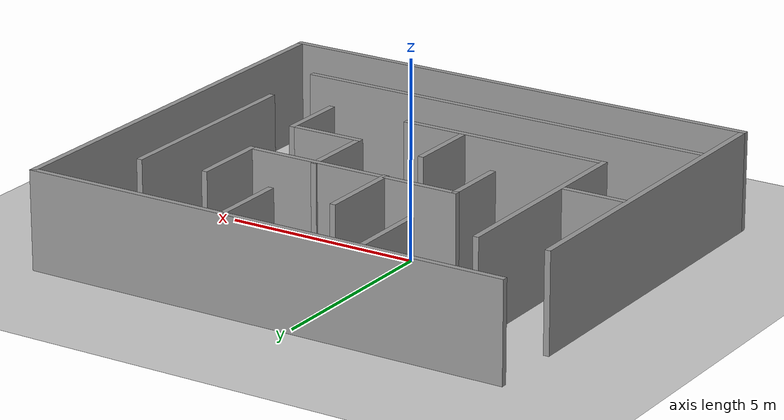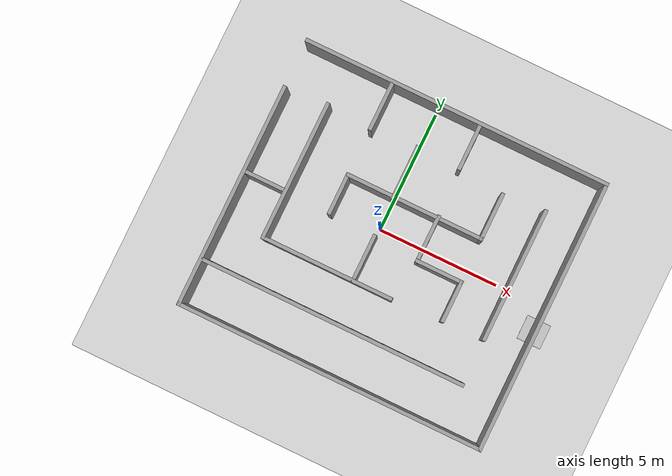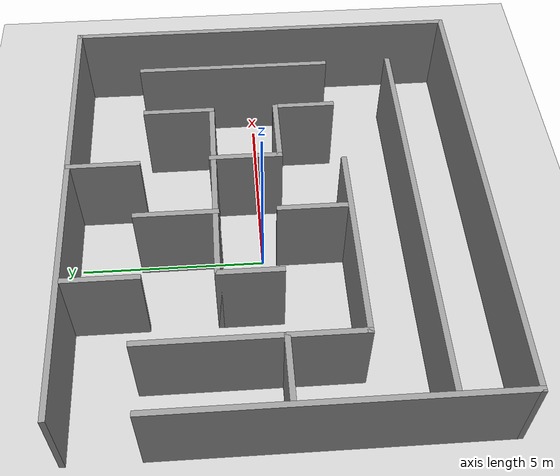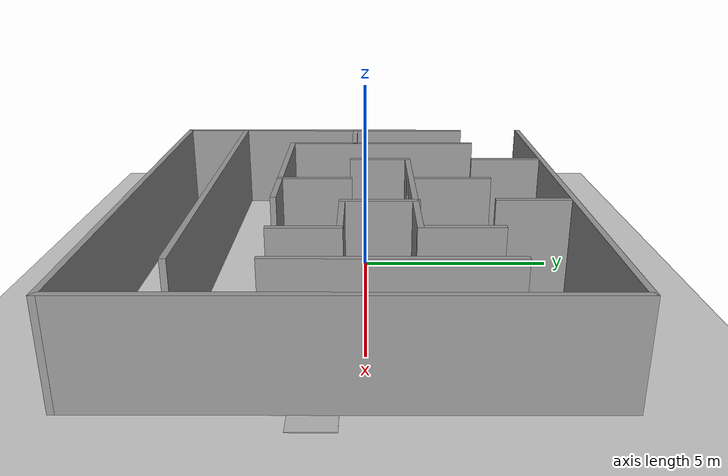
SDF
<?xml version="1.0" ?>
<sdf version="1.6">
  <world name="maze_world">
    <include>
      <uri>model://sun</uri>
    </include>
    <!-- A ground plane -->
    <include>
      <uri>model://ground_plane</uri>
    </include>
    <include>
    	<uri>model://maze</uri>
    </include>
    <plugin name="gazebo_ros_state" filename="libgazebo_ros_state.so">
      <ros>
        <namespace>/gazebo</namespace>
      </ros>
      <update_rate>50.0</update_rate>
    </plugin>
    <model name='marker_0001'>
      <static>1</static>
      <link name='link'>
        <visual name='visual'>
          <geometry>
            <mesh>
              <uri>model://marker_0001/meshes/marker_0001.dae</uri>
              <scale>2 2 2</scale>
            </mesh>
          </geometry>
        </visual>
        <self_collide>0</self_collide>
        <enable_wind>0</enable_wind>
        <kinematic>0</kinematic>
      </link>
      <pose>7.62 -1.0 -0.01 0 1.57 3.14</pose>
    </model>
  </world>
</sdf>

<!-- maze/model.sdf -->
<sdf version='1.7'>
  <model name='maze'>
    <pose>0.736927 -0.393909 0 0 -0 0</pose>
    <link name='Wall_1'>
      <collision name='Wall_1_Collision'>
        <geometry>
          <box>
            <size>12.75 0.15 2.5</size>
          </box>
        </geometry>
        <pose>0 0 1.25 0 -0 0</pose>
      </collision>
      <visual name='Wall_1_Visual'>
        <pose>0 0 1.25 0 -0 0</pose>
        <geometry>
          <box>
            <size>12.75 0.15 2.5</size>
          </box>
        </geometry>
        <material>
          <script>
            <uri>file://media/materials/scripts/gazebo.material</uri>
            <name>Gazebo/Grey</name>
          </script>
          <ambient>1 1 1 1</ambient>
        </material>
        <meta>
          <layer>0</layer>
        </meta>
      </visual>
      <pose>0 5.55 0 0 -0 0</pose>
    </link>
    <link name='Wall_10'>
      <collision name='Wall_10_Collision'>
        <geometry>
          <box>
            <size>5.75 0.15 2.5</size>
          </box>
        </geometry>
        <pose>0 0 1.25 0 -0 0</pose>
      </collision>
      <visual name='Wall_10_Visual'>
        <pose>0 0 1.25 0 -0 0</pose>
        <geometry>
          <box>
            <size>5.75 0.15 2.5</size>
          </box>
        </geometry>
        <material>
          <script>
            <uri>file://media/materials/scripts/gazebo.material</uri>
            <name>Gazebo/Grey</name>
          </script>
          <ambient>1 1 1 1</ambient>
        </material>
        <meta>
          <layer>0</layer>
        </meta>
      </visual>
      <pose>-4.54439 0.887986 0 0 -0 -1.5708</pose>
    </link>
    <link name='Wall_11'>
      <collision name='Wall_11_Collision'>
        <geometry>
          <box>
            <size>5.5 0.15 2.5</size>
          </box>
        </geometry>
        <pose>0 0 1.25 0 -0 0</pose>
      </collision>
      <visual name='Wall_11_Visual'>
        <pose>0 0 1.25 0 -0 0</pose>
        <geometry>
          <box>
            <size>5.5 0.15 2.5</size>
          </box>
        </geometry>
        <material>
          <script>
            <uri>file://media/materials/scripts/gazebo.material</uri>
            <name>Gazebo/Grey</name>
          </script>
          <ambient>1 1 1 1</ambient>
        </material>
        <meta>
          <layer>0</layer>
        </meta>
      </visual>
      <pose>-1.86939 -1.91201 0 0 -0 0</pose>
    </link>
    <link name='Wall_13'>
      <collision name='Wall_13_Collision'>
        <geometry>
          <box>
            <size>2 0.15 2.5</size>
          </box>
        </geometry>
        <pose>0 0 1.25 0 -0 0</pose>
      </collision>
      <visual name='Wall_13_Visual'>
        <pose>0 0 1.25 0 -0 0</pose>
        <geometry>
          <box>
            <size>2 0.15 2.5</size>
          </box>
        </geometry>
        <material>
          <script>
            <uri>file://media/materials/scripts/gazebo.material</uri>
            <name>Gazebo/Grey</name>
          </script>
          <ambient>1 1 1 1</ambient>
        </material>
        <meta>
          <layer>0</layer>
        </meta>
      </visual>
      <pose>-0.767159 -0.973055 0 0 -0 1.5708</pose>
    </link>
    <link name='Wall_15'>
      <collision name='Wall_15_Collision'>
        <geometry>
          <box>
            <size>1.75 0.15 2.5</size>
          </box>
        </geometry>
        <pose>0 0 1.25 0 -0 0</pose>
      </collision>
      <visual name='Wall_15_Visual'>
        <pose>0 0 1.25 0 -0 0</pose>
        <geometry>
          <box>
            <size>1.75 0.15 2.5</size>
          </box>
        </geometry>
        <material>
          <script>
            <uri>file://media/materials/scripts/gazebo.material</uri>
            <name>Gazebo/Grey</name>
          </script>
          <ambient>1 1 1 1</ambient>
        </material>
        <meta>
          <layer>0</layer>
        </meta>
      </visual>
      <pose>-2.68237 0.817159 0 0 -0 1.5708</pose>
    </link>
    <link name='Wall_16'>
      <collision name='Wall_16_Collision'>
        <geometry>
          <box>
            <size>5.75 0.15 2.5</size>
          </box>
        </geometry>
        <pose>0 0 1.25 0 -0 0</pose>
      </collision>
      <visual name='Wall_16_Visual'>
        <pose>0 0 1.25 0 -0 0</pose>
        <geometry>
          <box>
            <size>5.75 0.15 2.5</size>
          </box>
        </geometry>
        <material>
          <script>
            <uri>file://media/materials/scripts/gazebo.material</uri>
            <name>Gazebo/Grey</name>
          </script>
          <ambient>1 1 1 1</ambient>
        </material>
        <meta>
          <layer>0</layer>
        </meta>
      </visual>
      <pose>0.117627 1.61716 0 0 -0 0</pose>
    </link>
    <link name='Wall_17'>
      <collision name='Wall_17_Collision'>
        <geometry>
          <box>
            <size>2 0.15 2.5</size>
          </box>
        </geometry>
        <pose>0 0 1.25 0 -0 0</pose>
      </collision>
      <visual name='Wall_17_Visual'>
        <pose>0 0 1.25 0 -0 0</pose>
        <geometry>
          <box>
            <size>2 0.15 2.5</size>
          </box>
        </geometry>
        <material>
          <script>
            <uri>file://media/materials/scripts/gazebo.material</uri>
            <name>Gazebo/Grey</name>
          </script>
          <ambient>1 1 1 1</ambient>
        </material>
        <meta>
          <layer>0</layer>
        </meta>
      </visual>
      <pose>2.91763 2.54216 0 0 -0 1.5708</pose>
    </link>
    <link name='Wall_19'>
      <collision name='Wall_19_Collision'>
        <geometry>
          <box>
            <size>2.25 0.15 2.5</size>
          </box>
        </geometry>
        <pose>0 0 1.25 0 -0 0</pose>
      </collision>
      <visual name='Wall_19_Visual'>
        <pose>0 0 1.25 0 -0 0</pose>
        <geometry>
          <box>
            <size>2.25 0.15 2.5</size>
          </box>
        </geometry>
        <material>
          <script>
            <uri>file://media/materials/scripts/gazebo.material</uri>
            <name>Gazebo/Grey</name>
          </script>
          <ambient>1 1 1 1</ambient>
        </material>
        <meta>
          <layer>0</layer>
        </meta>
      </visual>
      <pose>-0.767159 2.63657 0 0 -0 1.5708</pose>
    </link>
    <link name='Wall_2'>
      <collision name='Wall_2_Collision'>
        <geometry>
          <box>
            <size>11.25 0.15 2.5</size>
          </box>
        </geometry>
        <pose>0 0 1.25 0 -0 0</pose>
      </collision>
      <visual name='Wall_2_Visual'>
        <pose>0 0 1.25 0 -0 0</pose>
        <geometry>
          <box>
            <size>11.25 0.15 2.5</size>
          </box>
        </geometry>
        <material>
          <script>
            <uri>file://media/materials/scripts/gazebo.material</uri>
            <name>Gazebo/Grey</name>
          </script>
          <ambient>1 1 1 1</ambient>
        </material>
        <meta>
          <layer>0</layer>
        </meta>
      </visual>
      <pose>6.3 0 0 0 -0 -1.5708</pose>
    </link>
    <link name='Wall_21'>
      <collision name='Wall_21_Collision'>
        <geometry>
          <box>
            <size>2 0.15 2.5</size>
          </box>
        </geometry>
        <pose>0 0 1.25 0 -0 0</pose>
      </collision>
      <visual name='Wall_21_Visual'>
        <pose>0 0 1.25 0 -0 0</pose>
        <geometry>
          <box>
            <size>2 0.15 2.5</size>
          </box>
        </geometry>
        <material>
          <script>
            <uri>file://media/materials/scripts/gazebo.material</uri>
            <name>Gazebo/Grey</name>
          </script>
          <ambient>1 1 1 1</ambient>
        </material>
        <meta>
          <layer>0</layer>
        </meta>
      </visual>
      <pose>1.09485 0.741371 0 0 -0 -1.5708</pose>
    </link>
    <link name='Wall_22'>
      <collision name='Wall_22_Collision'>
        <geometry>
          <box>
            <size>2 0.15 2.5</size>
          </box>
        </geometry>
        <pose>0 0 1.25 0 -0 0</pose>
      </collision>
      <visual name='Wall_22_Visual'>
        <pose>0 0 1.25 0 -0 0</pose>
        <geometry>
          <box>
            <size>2 0.15 2.5</size>
          </box>
        </geometry>
        <material>
          <script>
            <uri>file://media/materials/scripts/gazebo.material</uri>
            <name>Gazebo/Grey</name>
          </script>
          <ambient>1 1 1 1</ambient>
        </material>
        <meta>
          <layer>0</layer>
        </meta>
      </visual>
      <pose>2.01986 -0.183629 0 0 -0 0</pose>
    </link>
    <link name='Wall_23'>
      <collision name='Wall_23_Collision'>
        <geometry>
          <box>
            <size>1.75 0.15 2.5</size>
          </box>
        </geometry>
        <pose>0 0 1.25 0 -0 0</pose>
      </collision>
      <visual name='Wall_23_Visual'>
        <pose>0 0 1.25 0 -0 0</pose>
        <geometry>
          <box>
            <size>1.75 0.15 2.5</size>
          </box>
        </geometry>
        <material>
          <script>
            <uri>file://media/materials/scripts/gazebo.material</uri>
            <name>Gazebo/Grey</name>
          </script>
          <ambient>1 1 1 1</ambient>
        </material>
        <meta>
          <layer>0</layer>
        </meta>
      </visual>
      <pose>2.94486 -0.983629 0 0 -0 -1.5708</pose>
    </link>
    <link name='Wall_25'>
      <collision name='Wall_25_Collision'>
        <geometry>
          <box>
            <size>11 0.15 2.5</size>
          </box>
        </geometry>
        <pose>0 0 1.25 0 -0 0</pose>
      </collision>
      <visual name='Wall_25_Visual'>
        <pose>0 0 1.25 0 -0 0</pose>
        <geometry>
          <box>
            <size>11 0.15 2.5</size>
          </box>
        </geometry>
        <material>
          <script>
            <uri>file://media/materials/scripts/gazebo.material</uri>
            <name>Gazebo/Grey</name>
          </script>
          <ambient>1 1 1 1</ambient>
        </material>
        <meta>
          <layer>0</layer>
        </meta>
      </visual>
      <pose>-0.768599 -3.65367 0 0 -0 0</pose>
    </link>
    <link name='Wall_27'>
      <collision name='Wall_27_Collision'>
        <geometry>
          <box>
            <size>1.75 0.15 2.5</size>
          </box>
        </geometry>
        <pose>0 0 1.25 0 -0 0</pose>
      </collision>
      <visual name='Wall_27_Visual'>
        <pose>0 0 1.25 0 -0 0</pose>
        <geometry>
          <box>
            <size>1.75 0.15 2.5</size>
          </box>
        </geometry>
        <material>
          <script>
            <uri>file://media/materials/scripts/gazebo.material</uri>
            <name>Gazebo/Grey</name>
          </script>
          <ambient>1 1 1 1</ambient>
        </material>
        <meta>
          <layer>0</layer>
        </meta>
      </visual>
      <pose>-5.367 0.043759 0 0 -0 0</pose>
    </link>
    <link name='Wall_29'>
      <collision name='Wall_29_Collision'>
        <geometry>
          <box>
            <size>5.5 0.15 2.5</size>
          </box>
        </geometry>
        <pose>0 0 1.25 0 -0 0</pose>
      </collision>
      <visual name='Wall_29_Visual'>
        <pose>0 0 1.25 0 -0 0</pose>
        <geometry>
          <box>
            <size>5.5 0.15 2.5</size>
          </box>
        </geometry>
        <material>
          <script>
            <uri>file://media/materials/scripts/gazebo.material</uri>
            <name>Gazebo/Grey</name>
          </script>
          <ambient>1 1 1 1</ambient>
        </material>
        <meta>
          <layer>0</layer>
        </meta>
      </visual>
      <pose>4.65928 0.936546 0 0 -0 1.5708</pose>
    </link>
    <link name='Wall_3'>
      <collision name='Wall_3_Collision'>
        <geometry>
          <box>
            <size>12.75 0.15 2.5</size>
          </box>
        </geometry>
        <pose>0 0 1.25 0 -0 0</pose>
      </collision>
      <visual name='Wall_3_Visual'>
        <pose>0 0 1.25 0 -0 0</pose>
        <geometry>
          <box>
            <size>12.75 0.15 2.5</size>
          </box>
        </geometry>
        <material>
          <script>
            <uri>file://media/materials/scripts/gazebo.material</uri>
            <name>Gazebo/Grey</name>
          </script>
          <ambient>1 1 1 1</ambient>
        </material>
        <meta>
          <layer>0</layer>
        </meta>
      </visual>
      <pose>0 -5.55 0 0 -0 3.14159</pose>
    </link>
    <link name='Wall_4'>
      <collision name='Wall_4_Collision'>
        <geometry>
          <box>
            <size>9.25 0.15 2.5</size>
          </box>
        </geometry>
        <pose>0 0 1.25 0 -0 0</pose>
      </collision>
      <visual name='Wall_4_Visual'>
        <pose>0 0 1.25 0 -0 0</pose>
        <geometry>
          <box>
            <size>9.25 0.15 2.5</size>
          </box>
        </geometry>
        <material>
          <script>
            <uri>file://media/materials/scripts/gazebo.material</uri>
            <name>Gazebo/Grey</name>
          </script>
          <ambient>1 1 1 1</ambient>
        </material>
        <meta>
          <layer>0</layer>
        </meta>
      </visual>
      <pose>-6.3 -1 0 0 -0 1.5708</pose>
    </link>
    <link name='Wall_6'>
      <collision name='Wall_6_Collision'>
        <geometry>
          <box>
            <size>2 0.15 2.5</size>
          </box>
        </geometry>
        <pose>0 0 1.25 0 -0 0</pose>
      </collision>
      <visual name='Wall_6_Visual'>
        <pose>0 0 1.25 0 -0 0</pose>
        <geometry>
          <box>
            <size>2 0.15 2.5</size>
          </box>
        </geometry>
        <material>
          <script>
            <uri>file://media/materials/scripts/gazebo.material</uri>
            <name>Gazebo/Grey</name>
          </script>
          <ambient>1 1 1 1</ambient>
        </material>
        <meta>
          <layer>0</layer>
        </meta>
      </visual>
      <pose>-2.68237 4.492 0 0 -0 -1.5708</pose>
    </link>
    <link name='Wall_8'>
      <collision name='Wall_8_Collision'>
        <geometry>
          <box>
            <size>2 0.15 2.5</size>
          </box>
        </geometry>
        <pose>0 0 1.25 0 -0 0</pose>
      </collision>
      <visual name='Wall_8_Visual'>
        <pose>0 0 1.25 0 -0 0</pose>
        <geometry>
          <box>
            <size>2 0.15 2.5</size>
          </box>
        </geometry>
        <material>
          <script>
            <uri>file://media/materials/scripts/gazebo.material</uri>
            <name>Gazebo/Grey</name>
          </script>
          <ambient>1 1 1 1</ambient>
        </material>
        <meta>
          <layer>0</layer>
        </meta>
      </visual>
      <pose>1.01506 4.5984 0 0 -0 -1.5708</pose>
    </link>
    <static>1</static>
  </model>
</sdf>
